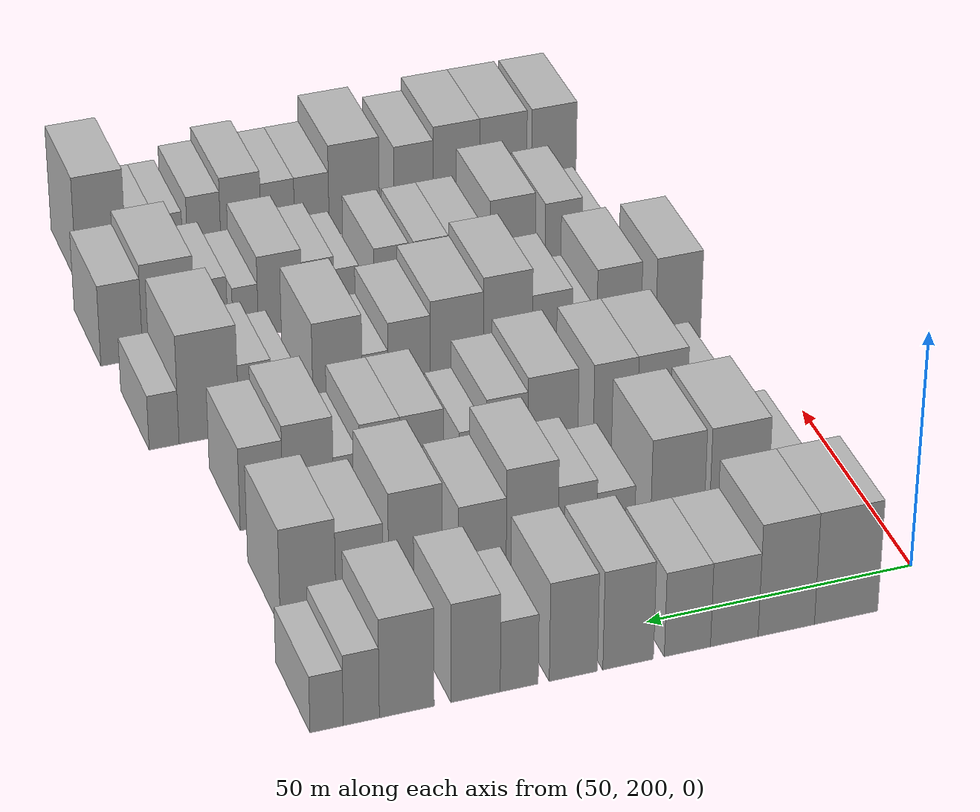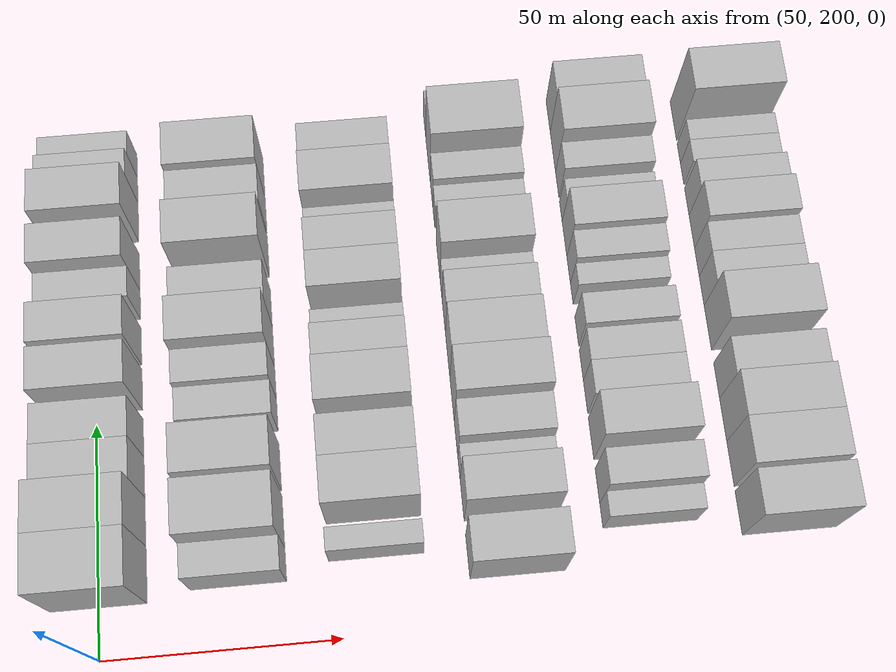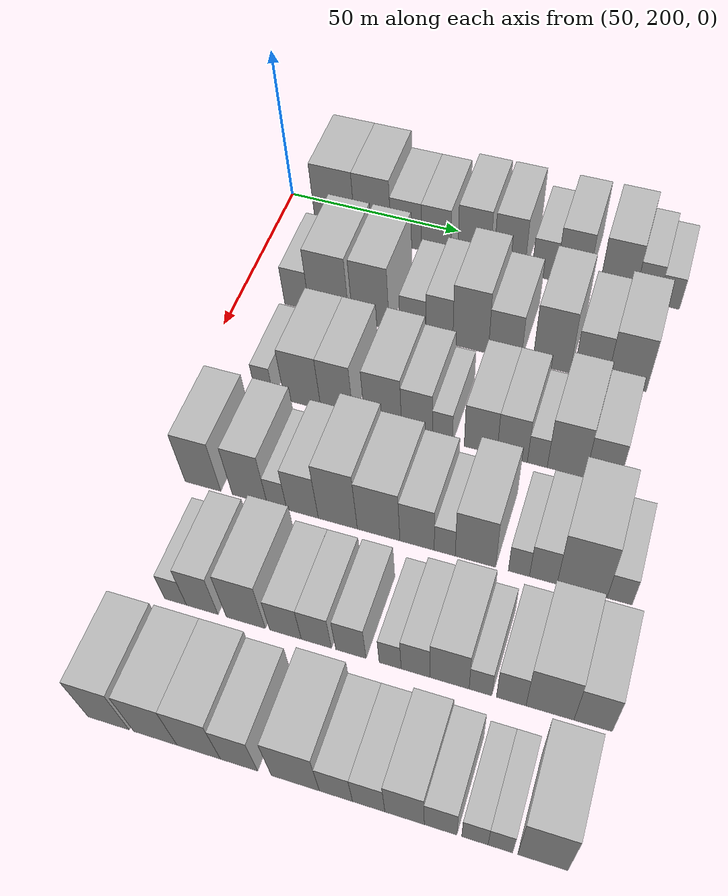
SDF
<sdf version="1.6">
 <world name="default">
  <model name="building_83">
   <static>1</static>
   <pose>50.0000 216.8279 0 0.000000 0.000000 0.000000</pose>
   <link name="link">
    <pose>0 0 12.00 0 0 0</pose>
    <collision name="collision"><geometry><box><size>20.0000 11.9053 24.0000</size></box></geometry></collision>
    <visual name="visual">
     <cast_shadows>0</cast_shadows>
     <geometry><box><size>20.0000 11.9053 24.0000</size></box></geometry>
     <material>
      <script>
       <uri>model://HANNAS_wall/materials/scripts</uri>
       <uri>model://HANNAS_wall/materials/textures</uri>
       <name>vrc/HANNAS_wall</name>
      </script>
     </material>
    </visual>
   </link>
  </model>
  <model name="building_84">
   <static>1</static>
   <pose>50.0000 228.0397 0 0.000000 0.000000 0.000000</pose>
   <link name="link">
    <pose>0 0 12.00 0 0 0</pose>
    <collision name="collision"><geometry><box><size>20.0000 10.5184 24.0000</size></box></geometry></collision>
    <visual name="visual">
     <cast_shadows>0</cast_shadows>
     <geometry><box><size>20.0000 10.5184 24.0000</size></box></geometry>
     <material>
      <script>
       <uri>model://HANNAS_wall/materials/scripts</uri>
       <uri>model://HANNAS_wall/materials/textures</uri>
       <name>vrc/HANNAS_wall</name>
      </script>
     </material>
    </visual>
   </link>
  </model>
  <model name="building_85">
   <static>1</static>
   <pose>50.0000 237.7181 0 0.000000 0.000000 0.000000</pose>
   <link name="link">
    <pose>0 0 9.00 0 0 0</pose>
    <collision name="collision"><geometry><box><size>20.0000 8.8385 18.0000</size></box></geometry></collision>
    <visual name="visual">
     <cast_shadows>0</cast_shadows>
     <geometry><box><size>20.0000 8.8385 18.0000</size></box></geometry>
     <material>
      <script>
       <uri>model://HANNAS_wall/materials/scripts</uri>
       <uri>model://HANNAS_wall/materials/textures</uri>
       <name>vrc/HANNAS_wall</name>
      </script>
     </material>
    </visual>
   </link>
  </model>
  <model name="building_86">
   <static>1</static>
   <pose>50.0000 246.3934 0 0.000000 0.000000 0.000000</pose>
   <link name="link">
    <pose>0 0 9.00 0 0 0</pose>
    <collision name="collision"><geometry><box><size>20.0000 8.5120 18.0000</size></box></geometry></collision>
    <visual name="visual">
     <cast_shadows>0</cast_shadows>
     <geometry><box><size>20.0000 8.5120 18.0000</size></box></geometry>
     <material>
      <script>
       <uri>model://HANNAS_wall/materials/scripts</uri>
       <uri>model://HANNAS_wall/materials/textures</uri>
       <name>vrc/HANNAS_wall</name>
      </script>
     </material>
    </visual>
   </link>
  </model>
  <model name="building_87">
   <static>1</static>
   <pose>50.0000 257.2827 0 0.000000 0.000000 0.000000</pose>
   <link name="link">
    <pose>0 0 10.50 0 0 0</pose>
    <collision name="collision"><geometry><box><size>20.0000 9.2667 21.0000</size></box></geometry></collision>
    <visual name="visual">
     <cast_shadows>0</cast_shadows>
     <geometry><box><size>20.0000 9.2667 21.0000</size></box></geometry>
     <material>
      <script>
       <uri>model://HANNAS_wall/materials/scripts</uri>
       <uri>model://HANNAS_wall/materials/textures</uri>
       <name>vrc/HANNAS_wall</name>
      </script>
     </material>
    </visual>
   </link>
  </model>
  <model name="building_88">
   <static>1</static>
   <pose>50.0000 267.2782 0 0.000000 0.000000 0.000000</pose>
   <link name="link">
    <pose>0 0 10.50 0 0 0</pose>
    <collision name="collision"><geometry><box><size>20.0000 8.7244 21.0000</size></box></geometry></collision>
    <visual name="visual">
     <cast_shadows>0</cast_shadows>
     <geometry><box><size>20.0000 8.7244 21.0000</size></box></geometry>
     <material>
      <script>
       <uri>model://HANNAS_wall/materials/scripts</uri>
       <uri>model://HANNAS_wall/materials/textures</uri>
       <name>vrc/HANNAS_wall</name>
      </script>
     </material>
    </visual>
   </link>
  </model>
  <model name="building_89">
   <static>1</static>
   <pose>50.0000 277.0668 0 0.000000 0.000000 0.000000</pose>
   <link name="link">
    <pose>0 0 7.50 0 0 0</pose>
    <collision name="collision"><geometry><box><size>20.0000 6.8528 15.0000</size></box></geometry></collision>
    <visual name="visual">
     <cast_shadows>0</cast_shadows>
     <geometry><box><size>20.0000 6.8528 15.0000</size></box></geometry>
     <material>
      <script>
       <uri>model://HANNAS_wall/materials/scripts</uri>
       <uri>model://HANNAS_wall/materials/textures</uri>
       <name>vrc/HANNAS_wall</name>
      </script>
     </material>
    </visual>
   </link>
  </model>
  <model name="building_90">
   <static>1</static>
   <pose>50.0000 284.9057 0 0.000000 0.000000 0.000000</pose>
   <link name="link">
    <pose>0 0 10.50 0 0 0</pose>
    <collision name="collision"><geometry><box><size>20.0000 8.8249 21.0000</size></box></geometry></collision>
    <visual name="visual">
     <cast_shadows>0</cast_shadows>
     <geometry><box><size>20.0000 8.8249 21.0000</size></box></geometry>
     <material>
      <script>
       <uri>model://HANNAS_wall/materials/scripts</uri>
       <uri>model://HANNAS_wall/materials/textures</uri>
       <name>vrc/HANNAS_wall</name>
      </script>
     </material>
    </visual>
   </link>
  </model>
  <model name="building_91">
   <static>1</static>
   <pose>50.0000 297.1972 0 0.000000 0.000000 0.000000</pose>
   <link name="link">
    <pose>0 0 10.50 0 0 0</pose>
    <collision name="collision"><geometry><box><size>20.0000 9.7582 21.0000</size></box></geometry></collision>
    <visual name="visual">
     <cast_shadows>0</cast_shadows>
     <geometry><box><size>20.0000 9.7582 21.0000</size></box></geometry>
     <material>
      <script>
       <uri>model://HANNAS_wall/materials/scripts</uri>
       <uri>model://HANNAS_wall/materials/textures</uri>
       <name>vrc/HANNAS_wall</name>
      </script>
     </material>
    </visual>
   </link>
  </model>
  <model name="building_92">
   <static>1</static>
   <pose>50.0000 305.2541 0 0.000000 0.000000 0.000000</pose>
   <link name="link">
    <pose>0 0 7.50 0 0 0</pose>
    <collision name="collision"><geometry><box><size>20.0000 6.3554 15.0000</size></box></geometry></collision>
    <visual name="visual">
     <cast_shadows>0</cast_shadows>
     <geometry><box><size>20.0000 6.3554 15.0000</size></box></geometry>
     <material>
      <script>
       <uri>model://HANNAS_wall/materials/scripts</uri>
       <uri>model://HANNAS_wall/materials/textures</uri>
       <name>vrc/HANNAS_wall</name>
      </script>
     </material>
    </visual>
   </link>
  </model>
  <model name="building_93">
   <static>1</static>
   <pose>50.0000 311.3676 0 0.000000 0.000000 0.000000</pose>
   <link name="link">
    <pose>0 0 6.00 0 0 0</pose>
    <collision name="collision"><geometry><box><size>20.0000 5.8716 12.0000</size></box></geometry></collision>
    <visual name="visual">
     <cast_shadows>0</cast_shadows>
     <geometry><box><size>20.0000 5.8716 12.0000</size></box></geometry>
     <material>
      <script>
       <uri>model://HANNAS_wall/materials/scripts</uri>
       <uri>model://HANNAS_wall/materials/textures</uri>
       <name>vrc/HANNAS_wall</name>
      </script>
     </material>
    </visual>
   </link>
  </model>
  <model name="building_194">
   <static>1</static>
   <pose>79.0000 216.3647 0 0.000000 0.000000 0.000000</pose>
   <link name="link">
    <pose>0 0 7.50 0 0 0</pose>
    <collision name="collision"><geometry><box><size>20.0000 7.0479 15.0000</size></box></geometry></collision>
    <visual name="visual">
     <cast_shadows>0</cast_shadows>
     <geometry><box><size>20.0000 7.0479 15.0000</size></box></geometry>
     <material>
      <script>
       <uri>model://HANNAS_wall/materials/scripts</uri>
       <uri>model://HANNAS_wall/materials/textures</uri>
       <name>vrc/HANNAS_wall</name>
      </script>
     </material>
    </visual>
   </link>
  </model>
  <model name="building_195">
   <static>1</static>
   <pose>79.0000 225.4957 0 0.000000 0.000000 0.000000</pose>
   <link name="link">
    <pose>0 0 12.00 0 0 0</pose>
    <collision name="collision"><geometry><box><size>20.0000 11.2140 24.0000</size></box></geometry></collision>
    <visual name="visual">
     <cast_shadows>0</cast_shadows>
     <geometry><box><size>20.0000 11.2140 24.0000</size></box></geometry>
     <material>
      <script>
       <uri>model://HANNAS_wall/materials/scripts</uri>
       <uri>model://HANNAS_wall/materials/textures</uri>
       <name>vrc/HANNAS_wall</name>
      </script>
     </material>
    </visual>
   </link>
  </model>
  <model name="building_196">
   <static>1</static>
   <pose>79.0000 237.2000 0 0.000000 0.000000 0.000000</pose>
   <link name="link">
    <pose>0 0 12.00 0 0 0</pose>
    <collision name="collision"><geometry><box><size>20.0000 10.1947 24.0000</size></box></geometry></collision>
    <visual name="visual">
     <cast_shadows>0</cast_shadows>
     <geometry><box><size>20.0000 10.1947 24.0000</size></box></geometry>
     <material>
      <script>
       <uri>model://HANNAS_wall/materials/scripts</uri>
       <uri>model://HANNAS_wall/materials/textures</uri>
       <name>vrc/HANNAS_wall</name>
      </script>
     </material>
    </visual>
   </link>
  </model>
  <model name="building_197">
   <static>1</static>
   <pose>79.0000 248.8759 0 0.000000 0.000000 0.000000</pose>
   <link name="link">
    <pose>0 0 7.50 0 0 0</pose>
    <collision name="collision"><geometry><box><size>20.0000 7.1571 15.0000</size></box></geometry></collision>
    <visual name="visual">
     <cast_shadows>0</cast_shadows>
     <geometry><box><size>20.0000 7.1571 15.0000</size></box></geometry>
     <material>
      <script>
       <uri>model://HANNAS_wall/materials/scripts</uri>
       <uri>model://HANNAS_wall/materials/textures</uri>
       <name>vrc/HANNAS_wall</name>
      </script>
     </material>
    </visual>
   </link>
  </model>
  <model name="building_198">
   <static>1</static>
   <pose>79.0000 256.0802 0 0.000000 0.000000 0.000000</pose>
   <link name="link">
    <pose>0 0 9.00 0 0 0</pose>
    <collision name="collision"><geometry><box><size>20.0000 7.2515 18.0000</size></box></geometry></collision>
    <visual name="visual">
     <cast_shadows>0</cast_shadows>
     <geometry><box><size>20.0000 7.2515 18.0000</size></box></geometry>
     <material>
      <script>
       <uri>model://HANNAS_wall/materials/scripts</uri>
       <uri>model://HANNAS_wall/materials/textures</uri>
       <name>vrc/HANNAS_wall</name>
      </script>
     </material>
    </visual>
   </link>
  </model>
  <model name="building_199">
   <static>1</static>
   <pose>79.0000 264.5120 0 0.000000 0.000000 0.000000</pose>
   <link name="link">
    <pose>0 0 12.00 0 0 0</pose>
    <collision name="collision"><geometry><box><size>20.0000 9.6120 24.0000</size></box></geometry></collision>
    <visual name="visual">
     <cast_shadows>0</cast_shadows>
     <geometry><box><size>20.0000 9.6120 24.0000</size></box></geometry>
     <material>
      <script>
       <uri>model://HANNAS_wall/materials/scripts</uri>
       <uri>model://HANNAS_wall/materials/textures</uri>
       <name>vrc/HANNAS_wall</name>
      </script>
     </material>
    </visual>
   </link>
  </model>
  <model name="building_200">
   <static>1</static>
   <pose>79.0000 273.7120 0 0.000000 0.000000 0.000000</pose>
   <link name="link">
    <pose>0 0 9.00 0 0 0</pose>
    <collision name="collision"><geometry><box><size>20.0000 8.7881 18.0000</size></box></geometry></collision>
    <visual name="visual">
     <cast_shadows>0</cast_shadows>
     <geometry><box><size>20.0000 8.7881 18.0000</size></box></geometry>
     <material>
      <script>
       <uri>model://HANNAS_wall/materials/scripts</uri>
       <uri>model://HANNAS_wall/materials/textures</uri>
       <name>vrc/HANNAS_wall</name>
      </script>
     </material>
    </visual>
   </link>
  </model>
  <model name="building_201">
   <static>1</static>
   <pose>79.0000 286.0327 0 0.000000 0.000000 0.000000</pose>
   <link name="link">
    <pose>0 0 12.00 0 0 0</pose>
    <collision name="collision"><geometry><box><size>20.0000 9.8533 24.0000</size></box></geometry></collision>
    <visual name="visual">
     <cast_shadows>0</cast_shadows>
     <geometry><box><size>20.0000 9.8533 24.0000</size></box></geometry>
     <material>
      <script>
       <uri>model://HANNAS_wall/materials/scripts</uri>
       <uri>model://HANNAS_wall/materials/textures</uri>
       <name>vrc/HANNAS_wall</name>
      </script>
     </material>
    </visual>
   </link>
  </model>
  <model name="building_202">
   <static>1</static>
   <pose>79.0000 296.2886 0 0.000000 0.000000 0.000000</pose>
   <link name="link">
    <pose>0 0 9.00 0 0 0</pose>
    <collision name="collision"><geometry><box><size>20.0000 8.6585 18.0000</size></box></geometry></collision>
    <visual name="visual">
     <cast_shadows>0</cast_shadows>
     <geometry><box><size>20.0000 8.6585 18.0000</size></box></geometry>
     <material>
      <script>
       <uri>model://HANNAS_wall/materials/scripts</uri>
       <uri>model://HANNAS_wall/materials/textures</uri>
       <name>vrc/HANNAS_wall</name>
      </script>
     </material>
    </visual>
   </link>
  </model>
  <model name="building_203">
   <static>1</static>
   <pose>79.0000 305.6801 0 0.000000 0.000000 0.000000</pose>
   <link name="link">
    <pose>0 0 10.50 0 0 0</pose>
    <collision name="collision"><geometry><box><size>20.0000 10.1244 21.0000</size></box></geometry></collision>
    <visual name="visual">
     <cast_shadows>0</cast_shadows>
     <geometry><box><size>20.0000 10.1244 21.0000</size></box></geometry>
     <material>
      <script>
       <uri>model://HANNAS_wall/materials/scripts</uri>
       <uri>model://HANNAS_wall/materials/textures</uri>
       <name>vrc/HANNAS_wall</name>
      </script>
     </material>
    </visual>
   </link>
  </model>
  <model name="building_313">
   <static>1</static>
   <pose>108.0000 218.6816 0 0.000000 0.000000 0.000000</pose>
   <link name="link">
    <pose>0 0 6.00 0 0 0</pose>
    <collision name="collision"><geometry><box><size>20.0000 4.9171 12.0000</size></box></geometry></collision>
    <visual name="visual">
     <cast_shadows>0</cast_shadows>
     <geometry><box><size>20.0000 4.9171 12.0000</size></box></geometry>
     <material>
      <script>
       <uri>model://HANNAS_wall/materials/scripts</uri>
       <uri>model://HANNAS_wall/materials/textures</uri>
       <name>vrc/HANNAS_wall</name>
      </script>
     </material>
    </visual>
   </link>
  </model>
  <model name="building_314">
   <static>1</static>
   <pose>108.0000 229.0045 0 0.000000 0.000000 0.000000</pose>
   <link name="link">
    <pose>0 0 10.50 0 0 0</pose>
    <collision name="collision"><geometry><box><size>20.0000 9.7286 21.0000</size></box></geometry></collision>
    <visual name="visual">
     <cast_shadows>0</cast_shadows>
     <geometry><box><size>20.0000 9.7286 21.0000</size></box></geometry>
     <material>
      <script>
       <uri>model://HANNAS_wall/materials/scripts</uri>
       <uri>model://HANNAS_wall/materials/textures</uri>
       <name>vrc/HANNAS_wall</name>
      </script>
     </material>
    </visual>
   </link>
  </model>
  <model name="building_315">
   <static>1</static>
   <pose>108.0000 238.1333 0 0.000000 0.000000 0.000000</pose>
   <link name="link">
    <pose>0 0 10.50 0 0 0</pose>
    <collision name="collision"><geometry><box><size>20.0000 8.5292 21.0000</size></box></geometry></collision>
    <visual name="visual">
     <cast_shadows>0</cast_shadows>
     <geometry><box><size>20.0000 8.5292 21.0000</size></box></geometry>
     <material>
      <script>
       <uri>model://HANNAS_wall/materials/scripts</uri>
       <uri>model://HANNAS_wall/materials/textures</uri>
       <name>vrc/HANNAS_wall</name>
      </script>
     </material>
    </visual>
   </link>
  </model>
  <model name="building_316">
   <static>1</static>
   <pose>108.0000 250.2283 0 0.000000 0.000000 0.000000</pose>
   <link name="link">
    <pose>0 0 10.50 0 0 0</pose>
    <collision name="collision"><geometry><box><size>20.0000 9.6608 21.0000</size></box></geometry></collision>
    <visual name="visual">
     <cast_shadows>0</cast_shadows>
     <geometry><box><size>20.0000 9.6608 21.0000</size></box></geometry>
     <material>
      <script>
       <uri>model://HANNAS_wall/materials/scripts</uri>
       <uri>model://HANNAS_wall/materials/textures</uri>
       <name>vrc/HANNAS_wall</name>
      </script>
     </material>
    </visual>
   </link>
  </model>
  <model name="building_317">
   <static>1</static>
   <pose>108.0000 259.0182 0 0.000000 0.000000 0.000000</pose>
   <link name="link">
    <pose>0 0 9.00 0 0 0</pose>
    <collision name="collision"><geometry><box><size>20.0000 7.9190 18.0000</size></box></geometry></collision>
    <visual name="visual">
     <cast_shadows>0</cast_shadows>
     <geometry><box><size>20.0000 7.9190 18.0000</size></box></geometry>
     <material>
      <script>
       <uri>model://HANNAS_wall/materials/scripts</uri>
       <uri>model://HANNAS_wall/materials/textures</uri>
       <name>vrc/HANNAS_wall</name>
      </script>
     </material>
    </visual>
   </link>
  </model>
  <model name="building_318">
   <static>1</static>
   <pose>108.0000 265.5538 0 0.000000 0.000000 0.000000</pose>
   <link name="link">
    <pose>0 0 6.00 0 0 0</pose>
    <collision name="collision"><geometry><box><size>20.0000 5.1522 12.0000</size></box></geometry></collision>
    <visual name="visual">
     <cast_shadows>0</cast_shadows>
     <geometry><box><size>20.0000 5.1522 12.0000</size></box></geometry>
     <material>
      <script>
       <uri>model://HANNAS_wall/materials/scripts</uri>
       <uri>model://HANNAS_wall/materials/textures</uri>
       <name>vrc/HANNAS_wall</name>
      </script>
     </material>
    </visual>
   </link>
  </model>
  <model name="building_319">
   <static>1</static>
   <pose>108.0000 275.2608 0 0.000000 0.000000 0.000000</pose>
   <link name="link">
    <pose>0 0 9.00 0 0 0</pose>
    <collision name="collision"><geometry><box><size>20.0000 8.2618 18.0000</size></box></geometry></collision>
    <visual name="visual">
     <cast_shadows>0</cast_shadows>
     <geometry><box><size>20.0000 8.2618 18.0000</size></box></geometry>
     <material>
      <script>
       <uri>model://HANNAS_wall/materials/scripts</uri>
       <uri>model://HANNAS_wall/materials/textures</uri>
       <name>vrc/HANNAS_wall</name>
      </script>
     </material>
    </visual>
   </link>
  </model>
  <model name="building_320">
   <static>1</static>
   <pose>108.0000 283.1948 0 0.000000 0.000000 0.000000</pose>
   <link name="link">
    <pose>0 0 9.00 0 0 0</pose>
    <collision name="collision"><geometry><box><size>20.0000 7.6061 18.0000</size></box></geometry></collision>
    <visual name="visual">
     <cast_shadows>0</cast_shadows>
     <geometry><box><size>20.0000 7.6061 18.0000</size></box></geometry>
     <material>
      <script>
       <uri>model://HANNAS_wall/materials/scripts</uri>
       <uri>model://HANNAS_wall/materials/textures</uri>
       <name>vrc/HANNAS_wall</name>
      </script>
     </material>
    </visual>
   </link>
  </model>
  <model name="building_321">
   <static>1</static>
   <pose>108.0000 289.4673 0 0.000000 0.000000 0.000000</pose>
   <link name="link">
    <pose>0 0 6.00 0 0 0</pose>
    <collision name="collision"><geometry><box><size>20.0000 4.9388 12.0000</size></box></geometry></collision>
    <visual name="visual">
     <cast_shadows>0</cast_shadows>
     <geometry><box><size>20.0000 4.9388 12.0000</size></box></geometry>
     <material>
      <script>
       <uri>model://HANNAS_wall/materials/scripts</uri>
       <uri>model://HANNAS_wall/materials/textures</uri>
       <name>vrc/HANNAS_wall</name>
      </script>
     </material>
    </visual>
   </link>
  </model>
  <model name="building_322">
   <static>1</static>
   <pose>108.0000 296.6614 0 0.000000 0.000000 0.000000</pose>
   <link name="link">
    <pose>0 0 10.50 0 0 0</pose>
    <collision name="collision"><geometry><box><size>20.0000 9.4494 21.0000</size></box></geometry></collision>
    <visual name="visual">
     <cast_shadows>0</cast_shadows>
     <geometry><box><size>20.0000 9.4494 21.0000</size></box></geometry>
     <material>
      <script>
       <uri>model://HANNAS_wall/materials/scripts</uri>
       <uri>model://HANNAS_wall/materials/textures</uri>
       <name>vrc/HANNAS_wall</name>
      </script>
     </material>
    </visual>
   </link>
  </model>
  <model name="building_323">
   <static>1</static>
   <pose>108.0000 305.4300 0 0.000000 0.000000 0.000000</pose>
   <link name="link">
    <pose>0 0 9.00 0 0 0</pose>
    <collision name="collision"><geometry><box><size>20.0000 8.0879 18.0000</size></box></geometry></collision>
    <visual name="visual">
     <cast_shadows>0</cast_shadows>
     <geometry><box><size>20.0000 8.0879 18.0000</size></box></geometry>
     <material>
      <script>
       <uri>model://HANNAS_wall/materials/scripts</uri>
       <uri>model://HANNAS_wall/materials/textures</uri>
       <name>vrc/HANNAS_wall</name>
      </script>
     </material>
    </visual>
   </link>
  </model>
  <model name="building_428">
   <static>1</static>
   <pose>137.0000 214.5690 0 0.000000 0.000000 0.000000</pose>
   <link name="link">
    <pose>0 0 10.50 0 0 0</pose>
    <collision name="collision"><geometry><box><size>20.0000 9.1962 21.0000</size></box></geometry></collision>
    <visual name="visual">
     <cast_shadows>0</cast_shadows>
     <geometry><box><size>20.0000 9.1962 21.0000</size></box></geometry>
     <material>
      <script>
       <uri>model://HANNAS_wall/materials/scripts</uri>
       <uri>model://HANNAS_wall/materials/textures</uri>
       <name>vrc/HANNAS_wall</name>
      </script>
     </material>
    </visual>
   </link>
  </model>
  <model name="building_429">
   <static>1</static>
   <pose>137.0000 226.6184 0 0.000000 0.000000 0.000000</pose>
   <link name="link">
    <pose>0 0 10.50 0 0 0</pose>
    <collision name="collision"><geometry><box><size>20.0000 8.9027 21.0000</size></box></geometry></collision>
    <visual name="visual">
     <cast_shadows>0</cast_shadows>
     <geometry><box><size>20.0000 8.9027 21.0000</size></box></geometry>
     <material>
      <script>
       <uri>model://HANNAS_wall/materials/scripts</uri>
       <uri>model://HANNAS_wall/materials/textures</uri>
       <name>vrc/HANNAS_wall</name>
      </script>
     </material>
    </visual>
   </link>
  </model>
  <model name="building_430">
   <static>1</static>
   <pose>137.0000 233.5416 0 0.000000 0.000000 0.000000</pose>
   <link name="link">
    <pose>0 0 6.00 0 0 0</pose>
    <collision name="collision"><geometry><box><size>20.0000 4.9438 12.0000</size></box></geometry></collision>
    <visual name="visual">
     <cast_shadows>0</cast_shadows>
     <geometry><box><size>20.0000 4.9438 12.0000</size></box></geometry>
     <material>
      <script>
       <uri>model://HANNAS_wall/materials/scripts</uri>
       <uri>model://HANNAS_wall/materials/textures</uri>
       <name>vrc/HANNAS_wall</name>
      </script>
     </material>
    </visual>
   </link>
  </model>
  <model name="building_431">
   <static>1</static>
   <pose>137.0000 239.9580 0 0.000000 0.000000 0.000000</pose>
   <link name="link">
    <pose>0 0 9.00 0 0 0</pose>
    <collision name="collision"><geometry><box><size>20.0000 7.8889 18.0000</size></box></geometry></collision>
    <visual name="visual">
     <cast_shadows>0</cast_shadows>
     <geometry><box><size>20.0000 7.8889 18.0000</size></box></geometry>
     <material>
      <script>
       <uri>model://HANNAS_wall/materials/scripts</uri>
       <uri>model://HANNAS_wall/materials/textures</uri>
       <name>vrc/HANNAS_wall</name>
      </script>
     </material>
    </visual>
   </link>
  </model>
  <model name="building_432">
   <static>1</static>
   <pose>137.0000 248.7296 0 0.000000 0.000000 0.000000</pose>
   <link name="link">
    <pose>0 0 12.00 0 0 0</pose>
    <collision name="collision"><geometry><box><size>20.0000 9.6543 24.0000</size></box></geometry></collision>
    <visual name="visual">
     <cast_shadows>0</cast_shadows>
     <geometry><box><size>20.0000 9.6543 24.0000</size></box></geometry>
     <material>
      <script>
       <uri>model://HANNAS_wall/materials/scripts</uri>
       <uri>model://HANNAS_wall/materials/textures</uri>
       <name>vrc/HANNAS_wall</name>
      </script>
     </material>
    </visual>
   </link>
  </model>
  <model name="building_433">
   <static>1</static>
   <pose>137.0000 258.7660 0 0.000000 0.000000 0.000000</pose>
   <link name="link">
    <pose>0 0 10.50 0 0 0</pose>
    <collision name="collision"><geometry><box><size>20.0000 10.4185 21.0000</size></box></geometry></collision>
    <visual name="visual">
     <cast_shadows>0</cast_shadows>
     <geometry><box><size>20.0000 10.4185 21.0000</size></box></geometry>
     <material>
      <script>
       <uri>model://HANNAS_wall/materials/scripts</uri>
       <uri>model://HANNAS_wall/materials/textures</uri>
       <name>vrc/HANNAS_wall</name>
      </script>
     </material>
    </visual>
   </link>
  </model>
  <model name="building_434">
   <static>1</static>
   <pose>137.0000 268.1206 0 0.000000 0.000000 0.000000</pose>
   <link name="link">
    <pose>0 0 9.00 0 0 0</pose>
    <collision name="collision"><geometry><box><size>20.0000 8.2907 18.0000</size></box></geometry></collision>
    <visual name="visual">
     <cast_shadows>0</cast_shadows>
     <geometry><box><size>20.0000 8.2907 18.0000</size></box></geometry>
     <material>
      <script>
       <uri>model://HANNAS_wall/materials/scripts</uri>
       <uri>model://HANNAS_wall/materials/textures</uri>
       <name>vrc/HANNAS_wall</name>
      </script>
     </material>
    </visual>
   </link>
  </model>
  <model name="building_435">
   <static>1</static>
   <pose>137.0000 274.7733 0 0.000000 0.000000 0.000000</pose>
   <link name="link">
    <pose>0 0 6.00 0 0 0</pose>
    <collision name="collision"><geometry><box><size>20.0000 5.0147 12.0000</size></box></geometry></collision>
    <visual name="visual">
     <cast_shadows>0</cast_shadows>
     <geometry><box><size>20.0000 5.0147 12.0000</size></box></geometry>
     <material>
      <script>
       <uri>model://HANNAS_wall/materials/scripts</uri>
       <uri>model://HANNAS_wall/materials/textures</uri>
       <name>vrc/HANNAS_wall</name>
      </script>
     </material>
    </visual>
   </link>
  </model>
  <model name="building_436">
   <static>1</static>
   <pose>137.0000 282.0683 0 0.000000 0.000000 0.000000</pose>
   <link name="link">
    <pose>0 0 10.50 0 0 0</pose>
    <collision name="collision"><geometry><box><size>20.0000 9.5755 21.0000</size></box></geometry></collision>
    <visual name="visual">
     <cast_shadows>0</cast_shadows>
     <geometry><box><size>20.0000 9.5755 21.0000</size></box></geometry>
     <material>
      <script>
       <uri>model://HANNAS_wall/materials/scripts</uri>
       <uri>model://HANNAS_wall/materials/textures</uri>
       <name>vrc/HANNAS_wall</name>
      </script>
     </material>
    </visual>
   </link>
  </model>
  <model name="building_437">
   <static>1</static>
   <pose>137.0000 292.3132 0 0.000000 0.000000 0.000000</pose>
   <link name="link">
    <pose>0 0 6.00 0 0 0</pose>
    <collision name="collision"><geometry><box><size>20.0000 4.9142 12.0000</size></box></geometry></collision>
    <visual name="visual">
     <cast_shadows>0</cast_shadows>
     <geometry><box><size>20.0000 4.9142 12.0000</size></box></geometry>
     <material>
      <script>
       <uri>model://HANNAS_wall/materials/scripts</uri>
       <uri>model://HANNAS_wall/materials/textures</uri>
       <name>vrc/HANNAS_wall</name>
      </script>
     </material>
    </visual>
   </link>
  </model>
  <model name="building_438">
   <static>1</static>
   <pose>137.0000 297.9728 0 0.000000 0.000000 0.000000</pose>
   <link name="link">
    <pose>0 0 7.50 0 0 0</pose>
    <collision name="collision"><geometry><box><size>20.0000 6.4049 15.0000</size></box></geometry></collision>
    <visual name="visual">
     <cast_shadows>0</cast_shadows>
     <geometry><box><size>20.0000 6.4049 15.0000</size></box></geometry>
     <material>
      <script>
       <uri>model://HANNAS_wall/materials/scripts</uri>
       <uri>model://HANNAS_wall/materials/textures</uri>
       <name>vrc/HANNAS_wall</name>
      </script>
     </material>
    </visual>
   </link>
  </model>
  <model name="building_439">
   <static>1</static>
   <pose>137.0000 306.9114 0 0.000000 0.000000 0.000000</pose>
   <link name="link">
    <pose>0 0 12.00 0 0 0</pose>
    <collision name="collision"><geometry><box><size>20.0000 11.4725 24.0000</size></box></geometry></collision>
    <visual name="visual">
     <cast_shadows>0</cast_shadows>
     <geometry><box><size>20.0000 11.4725 24.0000</size></box></geometry>
     <material>
      <script>
       <uri>model://HANNAS_wall/materials/scripts</uri>
       <uri>model://HANNAS_wall/materials/textures</uri>
       <name>vrc/HANNAS_wall</name>
      </script>
     </material>
    </visual>
   </link>
  </model>
  <model name="building_440">
   <static>1</static>
   <pose>137.0000 315.4998 0 0.000000 0.000000 0.000000</pose>
   <link name="link">
    <pose>0 0 6.00 0 0 0</pose>
    <collision name="collision"><geometry><box><size>20.0000 5.7043 12.0000</size></box></geometry></collision>
    <visual name="visual">
     <cast_shadows>0</cast_shadows>
     <geometry><box><size>20.0000 5.7043 12.0000</size></box></geometry>
     <material>
      <script>
       <uri>model://HANNAS_wall/materials/scripts</uri>
       <uri>model://HANNAS_wall/materials/textures</uri>
       <name>vrc/HANNAS_wall</name>
      </script>
     </material>
    </visual>
   </link>
  </model>
  <model name="building_550">
   <static>1</static>
   <pose>166.0000 220.7451 0 0.000000 0.000000 0.000000</pose>
   <link name="link">
    <pose>0 0 6.00 0 0 0</pose>
    <collision name="collision"><geometry><box><size>20.0000 5.3026 12.0000</size></box></geometry></collision>
    <visual name="visual">
     <cast_shadows>0</cast_shadows>
     <geometry><box><size>20.0000 5.3026 12.0000</size></box></geometry>
     <material>
      <script>
       <uri>model://HANNAS_wall/materials/scripts</uri>
       <uri>model://HANNAS_wall/materials/textures</uri>
       <name>vrc/HANNAS_wall</name>
      </script>
     </material>
    </visual>
   </link>
  </model>
  <model name="building_551">
   <static>1</static>
   <pose>166.0000 227.1933 0 0.000000 0.000000 0.000000</pose>
   <link name="link">
    <pose>0 0 9.00 0 0 0</pose>
    <collision name="collision"><geometry><box><size>20.0000 7.5938 18.0000</size></box></geometry></collision>
    <visual name="visual">
     <cast_shadows>0</cast_shadows>
     <geometry><box><size>20.0000 7.5938 18.0000</size></box></geometry>
     <material>
      <script>
       <uri>model://HANNAS_wall/materials/scripts</uri>
       <uri>model://HANNAS_wall/materials/textures</uri>
       <name>vrc/HANNAS_wall</name>
      </script>
     </material>
    </visual>
   </link>
  </model>
  <model name="building_552">
   <static>1</static>
   <pose>166.0000 237.6352 0 0.000000 0.000000 0.000000</pose>
   <link name="link">
    <pose>0 0 10.50 0 0 0</pose>
    <collision name="collision"><geometry><box><size>20.0000 9.2900 21.0000</size></box></geometry></collision>
    <visual name="visual">
     <cast_shadows>0</cast_shadows>
     <geometry><box><size>20.0000 9.2900 21.0000</size></box></geometry>
     <material>
      <script>
       <uri>model://HANNAS_wall/materials/scripts</uri>
       <uri>model://HANNAS_wall/materials/textures</uri>
       <name>vrc/HANNAS_wall</name>
      </script>
     </material>
    </visual>
   </link>
  </model>
  <model name="building_553">
   <static>1</static>
   <pose>166.0000 246.9875 0 0.000000 0.000000 0.000000</pose>
   <link name="link">
    <pose>0 0 7.50 0 0 0</pose>
    <collision name="collision"><geometry><box><size>20.0000 7.4147 15.0000</size></box></geometry></collision>
    <visual name="visual">
     <cast_shadows>0</cast_shadows>
     <geometry><box><size>20.0000 7.4147 15.0000</size></box></geometry>
     <material>
      <script>
       <uri>model://HANNAS_wall/materials/scripts</uri>
       <uri>model://HANNAS_wall/materials/textures</uri>
       <name>vrc/HANNAS_wall</name>
      </script>
     </material>
    </visual>
   </link>
  </model>
  <model name="building_554">
   <static>1</static>
   <pose>166.0000 254.2057 0 0.000000 0.000000 0.000000</pose>
   <link name="link">
    <pose>0 0 7.50 0 0 0</pose>
    <collision name="collision"><geometry><box><size>20.0000 7.0215 15.0000</size></box></geometry></collision>
    <visual name="visual">
     <cast_shadows>0</cast_shadows>
     <geometry><box><size>20.0000 7.0215 15.0000</size></box></geometry>
     <material>
      <script>
       <uri>model://HANNAS_wall/materials/scripts</uri>
       <uri>model://HANNAS_wall/materials/textures</uri>
       <name>vrc/HANNAS_wall</name>
      </script>
     </material>
    </visual>
   </link>
  </model>
  <model name="building_555">
   <static>1</static>
   <pose>166.0000 262.1870 0 0.000000 0.000000 0.000000</pose>
   <link name="link">
    <pose>0 0 7.50 0 0 0</pose>
    <collision name="collision"><geometry><box><size>20.0000 6.9411 15.0000</size></box></geometry></collision>
    <visual name="visual">
     <cast_shadows>0</cast_shadows>
     <geometry><box><size>20.0000 6.9411 15.0000</size></box></geometry>
     <material>
      <script>
       <uri>model://HANNAS_wall/materials/scripts</uri>
       <uri>model://HANNAS_wall/materials/textures</uri>
       <name>vrc/HANNAS_wall</name>
      </script>
     </material>
    </visual>
   </link>
  </model>
  <model name="building_556">
   <static>1</static>
   <pose>166.0000 271.1408 0 0.000000 0.000000 0.000000</pose>
   <link name="link">
    <pose>0 0 6.00 0 0 0</pose>
    <collision name="collision"><geometry><box><size>20.0000 4.9665 12.0000</size></box></geometry></collision>
    <visual name="visual">
     <cast_shadows>0</cast_shadows>
     <geometry><box><size>20.0000 4.9665 12.0000</size></box></geometry>
     <material>
      <script>
       <uri>model://HANNAS_wall/materials/scripts</uri>
       <uri>model://HANNAS_wall/materials/textures</uri>
       <name>vrc/HANNAS_wall</name>
      </script>
     </material>
    </visual>
   </link>
  </model>
  <model name="building_557">
   <static>1</static>
   <pose>166.0000 276.8633 0 0.000000 0.000000 0.000000</pose>
   <link name="link">
    <pose>0 0 7.50 0 0 0</pose>
    <collision name="collision"><geometry><box><size>20.0000 6.4786 15.0000</size></box></geometry></collision>
    <visual name="visual">
     <cast_shadows>0</cast_shadows>
     <geometry><box><size>20.0000 6.4786 15.0000</size></box></geometry>
     <material>
      <script>
       <uri>model://HANNAS_wall/materials/scripts</uri>
       <uri>model://HANNAS_wall/materials/textures</uri>
       <name>vrc/HANNAS_wall</name>
      </script>
     </material>
    </visual>
   </link>
  </model>
  <model name="building_558">
   <static>1</static>
   <pose>166.0000 284.4492 0 0.000000 0.000000 0.000000</pose>
   <link name="link">
    <pose>0 0 9.00 0 0 0</pose>
    <collision name="collision"><geometry><box><size>20.0000 8.6931 18.0000</size></box></geometry></collision>
    <visual name="visual">
     <cast_shadows>0</cast_shadows>
     <geometry><box><size>20.0000 8.6931 18.0000</size></box></geometry>
     <material>
      <script>
       <uri>model://HANNAS_wall/materials/scripts</uri>
       <uri>model://HANNAS_wall/materials/textures</uri>
       <name>vrc/HANNAS_wall</name>
      </script>
     </material>
    </visual>
   </link>
  </model>
  <model name="building_559">
   <static>1</static>
   <pose>166.0000 291.3035 0 0.000000 0.000000 0.000000</pose>
   <link name="link">
    <pose>0 0 6.00 0 0 0</pose>
    <collision name="collision"><geometry><box><size>20.0000 5.0154 12.0000</size></box></geometry></collision>
    <visual name="visual">
     <cast_shadows>0</cast_shadows>
     <geometry><box><size>20.0000 5.0154 12.0000</size></box></geometry>
     <material>
      <script>
       <uri>model://HANNAS_wall/materials/scripts</uri>
       <uri>model://HANNAS_wall/materials/textures</uri>
       <name>vrc/HANNAS_wall</name>
      </script>
     </material>
    </visual>
   </link>
  </model>
  <model name="building_560">
   <static>1</static>
   <pose>166.0000 298.0353 0 0.000000 0.000000 0.000000</pose>
   <link name="link">
    <pose>0 0 7.50 0 0 0</pose>
    <collision name="collision"><geometry><box><size>20.0000 6.4483 15.0000</size></box></geometry></collision>
    <visual name="visual">
     <cast_shadows>0</cast_shadows>
     <geometry><box><size>20.0000 6.4483 15.0000</size></box></geometry>
     <material>
      <script>
       <uri>model://HANNAS_wall/materials/scripts</uri>
       <uri>model://HANNAS_wall/materials/textures</uri>
       <name>vrc/HANNAS_wall</name>
      </script>
     </material>
    </visual>
   </link>
  </model>
  <model name="building_561">
   <static>1</static>
   <pose>166.0000 306.4327 0 0.000000 0.000000 0.000000</pose>
   <link name="link">
    <pose>0 0 10.50 0 0 0</pose>
    <collision name="collision"><geometry><box><size>20.0000 10.3465 21.0000</size></box></geometry></collision>
    <visual name="visual">
     <cast_shadows>0</cast_shadows>
     <geometry><box><size>20.0000 10.3465 21.0000</size></box></geometry>
     <material>
      <script>
       <uri>model://HANNAS_wall/materials/scripts</uri>
       <uri>model://HANNAS_wall/materials/textures</uri>
       <name>vrc/HANNAS_wall</name>
      </script>
     </material>
    </visual>
   </link>
  </model>
  <model name="building_562">
   <static>1</static>
   <pose>166.0000 315.7016 0 0.000000 0.000000 0.000000</pose>
   <link name="link">
    <pose>0 0 9.00 0 0 0</pose>
    <collision name="collision"><geometry><box><size>20.0000 8.1911 18.0000</size></box></geometry></collision>
    <visual name="visual">
     <cast_shadows>0</cast_shadows>
     <geometry><box><size>20.0000 8.1911 18.0000</size></box></geometry>
     <material>
      <script>
       <uri>model://HANNAS_wall/materials/scripts</uri>
       <uri>model://HANNAS_wall/materials/textures</uri>
       <name>vrc/HANNAS_wall</name>
      </script>
     </material>
    </visual>
   </link>
  </model>
  <model name="building_664">
   <static>1</static>
   <pose>195.0000 218.7587 0 0.000000 0.000000 0.000000</pose>
   <link name="link">
    <pose>0 0 10.50 0 0 0</pose>
    <collision name="collision"><geometry><box><size>20.0000 9.4787 21.0000</size></box></geometry></collision>
    <visual name="visual">
     <cast_shadows>0</cast_shadows>
     <geometry><box><size>20.0000 9.4787 21.0000</size></box></geometry>
     <material>
      <script>
       <uri>model://HANNAS_wall/materials/scripts</uri>
       <uri>model://HANNAS_wall/materials/textures</uri>
       <name>vrc/HANNAS_wall</name>
      </script>
     </material>
    </visual>
   </link>
  </model>
  <model name="building_665">
   <static>1</static>
   <pose>195.0000 229.4463 0 0.000000 0.000000 0.000000</pose>
   <link name="link">
    <pose>0 0 10.50 0 0 0</pose>
    <collision name="collision"><geometry><box><size>20.0000 9.8966 21.0000</size></box></geometry></collision>
    <visual name="visual">
     <cast_shadows>0</cast_shadows>
     <geometry><box><size>20.0000 9.8966 21.0000</size></box></geometry>
     <material>
      <script>
       <uri>model://HANNAS_wall/materials/scripts</uri>
       <uri>model://HANNAS_wall/materials/textures</uri>
       <name>vrc/HANNAS_wall</name>
      </script>
     </material>
    </visual>
   </link>
  </model>
  <model name="building_666">
   <static>1</static>
   <pose>195.0000 239.2358 0 0.000000 0.000000 0.000000</pose>
   <link name="link">
    <pose>0 0 10.50 0 0 0</pose>
    <collision name="collision"><geometry><box><size>20.0000 9.6824 21.0000</size></box></geometry></collision>
    <visual name="visual">
     <cast_shadows>0</cast_shadows>
     <geometry><box><size>20.0000 9.6824 21.0000</size></box></geometry>
     <material>
      <script>
       <uri>model://HANNAS_wall/materials/scripts</uri>
       <uri>model://HANNAS_wall/materials/textures</uri>
       <name>vrc/HANNAS_wall</name>
      </script>
     </material>
    </visual>
   </link>
  </model>
  <model name="building_667">
   <static>1</static>
   <pose>195.0000 248.1605 0 0.000000 0.000000 0.000000</pose>
   <link name="link">
    <pose>0 0 9.00 0 0 0</pose>
    <collision name="collision"><geometry><box><size>20.0000 8.1670 18.0000</size></box></geometry></collision>
    <visual name="visual">
     <cast_shadows>0</cast_shadows>
     <geometry><box><size>20.0000 8.1670 18.0000</size></box></geometry>
     <material>
      <script>
       <uri>model://HANNAS_wall/materials/scripts</uri>
       <uri>model://HANNAS_wall/materials/textures</uri>
       <name>vrc/HANNAS_wall</name>
      </script>
     </material>
    </visual>
   </link>
  </model>
  <model name="building_668">
   <static>1</static>
   <pose>195.0000 260.4467 0 0.000000 0.000000 0.000000</pose>
   <link name="link">
    <pose>0 0 10.50 0 0 0</pose>
    <collision name="collision"><geometry><box><size>20.0000 10.4055 21.0000</size></box></geometry></collision>
    <visual name="visual">
     <cast_shadows>0</cast_shadows>
     <geometry><box><size>20.0000 10.4055 21.0000</size></box></geometry>
     <material>
      <script>
       <uri>model://HANNAS_wall/materials/scripts</uri>
       <uri>model://HANNAS_wall/materials/textures</uri>
       <name>vrc/HANNAS_wall</name>
      </script>
     </material>
    </visual>
   </link>
  </model>
  <model name="building_669">
   <static>1</static>
   <pose>195.0000 269.1874 0 0.000000 0.000000 0.000000</pose>
   <link name="link">
    <pose>0 0 7.50 0 0 0</pose>
    <collision name="collision"><geometry><box><size>20.0000 7.0760 15.0000</size></box></geometry></collision>
    <visual name="visual">
     <cast_shadows>0</cast_shadows>
     <geometry><box><size>20.0000 7.0760 15.0000</size></box></geometry>
     <material>
      <script>
       <uri>model://HANNAS_wall/materials/scripts</uri>
       <uri>model://HANNAS_wall/materials/textures</uri>
       <name>vrc/HANNAS_wall</name>
      </script>
     </material>
    </visual>
   </link>
  </model>
  <model name="building_670">
   <static>1</static>
   <pose>195.0000 276.1486 0 0.000000 0.000000 0.000000</pose>
   <link name="link">
    <pose>0 0 7.50 0 0 0</pose>
    <collision name="collision"><geometry><box><size>20.0000 6.8464 15.0000</size></box></geometry></collision>
    <visual name="visual">
     <cast_shadows>0</cast_shadows>
     <geometry><box><size>20.0000 6.8464 15.0000</size></box></geometry>
     <material>
      <script>
       <uri>model://HANNAS_wall/materials/scripts</uri>
       <uri>model://HANNAS_wall/materials/textures</uri>
       <name>vrc/HANNAS_wall</name>
      </script>
     </material>
    </visual>
   </link>
  </model>
  <model name="building_671">
   <static>1</static>
   <pose>195.0000 283.6806 0 0.000000 0.000000 0.000000</pose>
   <link name="link">
    <pose>0 0 9.00 0 0 0</pose>
    <collision name="collision"><geometry><box><size>20.0000 8.2177 18.0000</size></box></geometry></collision>
    <visual name="visual">
     <cast_shadows>0</cast_shadows>
     <geometry><box><size>20.0000 8.2177 18.0000</size></box></geometry>
     <material>
      <script>
       <uri>model://HANNAS_wall/materials/scripts</uri>
       <uri>model://HANNAS_wall/materials/textures</uri>
       <name>vrc/HANNAS_wall</name>
      </script>
     </material>
    </visual>
   </link>
  </model>
  <model name="building_672">
   <static>1</static>
   <pose>195.0000 291.1536 0 0.000000 0.000000 0.000000</pose>
   <link name="link">
    <pose>0 0 7.50 0 0 0</pose>
    <collision name="collision"><geometry><box><size>20.0000 6.7282 15.0000</size></box></geometry></collision>
    <visual name="visual">
     <cast_shadows>0</cast_shadows>
     <geometry><box><size>20.0000 6.7282 15.0000</size></box></geometry>
     <material>
      <script>
       <uri>model://HANNAS_wall/materials/scripts</uri>
       <uri>model://HANNAS_wall/materials/textures</uri>
       <name>vrc/HANNAS_wall</name>
      </script>
     </material>
    </visual>
   </link>
  </model>
  <model name="building_673">
   <static>1</static>
   <pose>195.0000 298.1959 0 0.000000 0.000000 0.000000</pose>
   <link name="link">
    <pose>0 0 6.00 0 0 0</pose>
    <collision name="collision"><geometry><box><size>20.0000 5.3563 12.0000</size></box></geometry></collision>
    <visual name="visual">
     <cast_shadows>0</cast_shadows>
     <geometry><box><size>20.0000 5.3563 12.0000</size></box></geometry>
     <material>
      <script>
       <uri>model://HANNAS_wall/materials/scripts</uri>
       <uri>model://HANNAS_wall/materials/textures</uri>
       <name>vrc/HANNAS_wall</name>
      </script>
     </material>
    </visual>
   </link>
  </model>
  <model name="building_674">
   <static>1</static>
   <pose>195.0000 303.3840 0 0.000000 0.000000 0.000000</pose>
   <link name="link">
    <pose>0 0 6.00 0 0 0</pose>
    <collision name="collision"><geometry><box><size>20.0000 5.0198 12.0000</size></box></geometry></collision>
    <visual name="visual">
     <cast_shadows>0</cast_shadows>
     <geometry><box><size>20.0000 5.0198 12.0000</size></box></geometry>
     <material>
      <script>
       <uri>model://HANNAS_wall/materials/scripts</uri>
       <uri>model://HANNAS_wall/materials/textures</uri>
       <name>vrc/HANNAS_wall</name>
      </script>
     </material>
    </visual>
   </link>
  </model>
  <model name="building_675">
   <static>1</static>
   <pose>195.0000 311.9216 0 0.000000 0.000000 0.000000</pose>
   <link name="link">
    <pose>0 0 12.00 0 0 0</pose>
    <collision name="collision"><geometry><box><size>20.0000 10.0554 24.0000</size></box></geometry></collision>
    <visual name="visual">
     <cast_shadows>0</cast_shadows>
     <geometry><box><size>20.0000 10.0554 24.0000</size></box></geometry>
     <material>
      <script>
       <uri>model://HANNAS_wall/materials/scripts</uri>
       <uri>model://HANNAS_wall/materials/textures</uri>
       <name>vrc/HANNAS_wall</name>
      </script>
     </material>
    </visual>
   </link>
  </model>
 </world>
</sdf>
